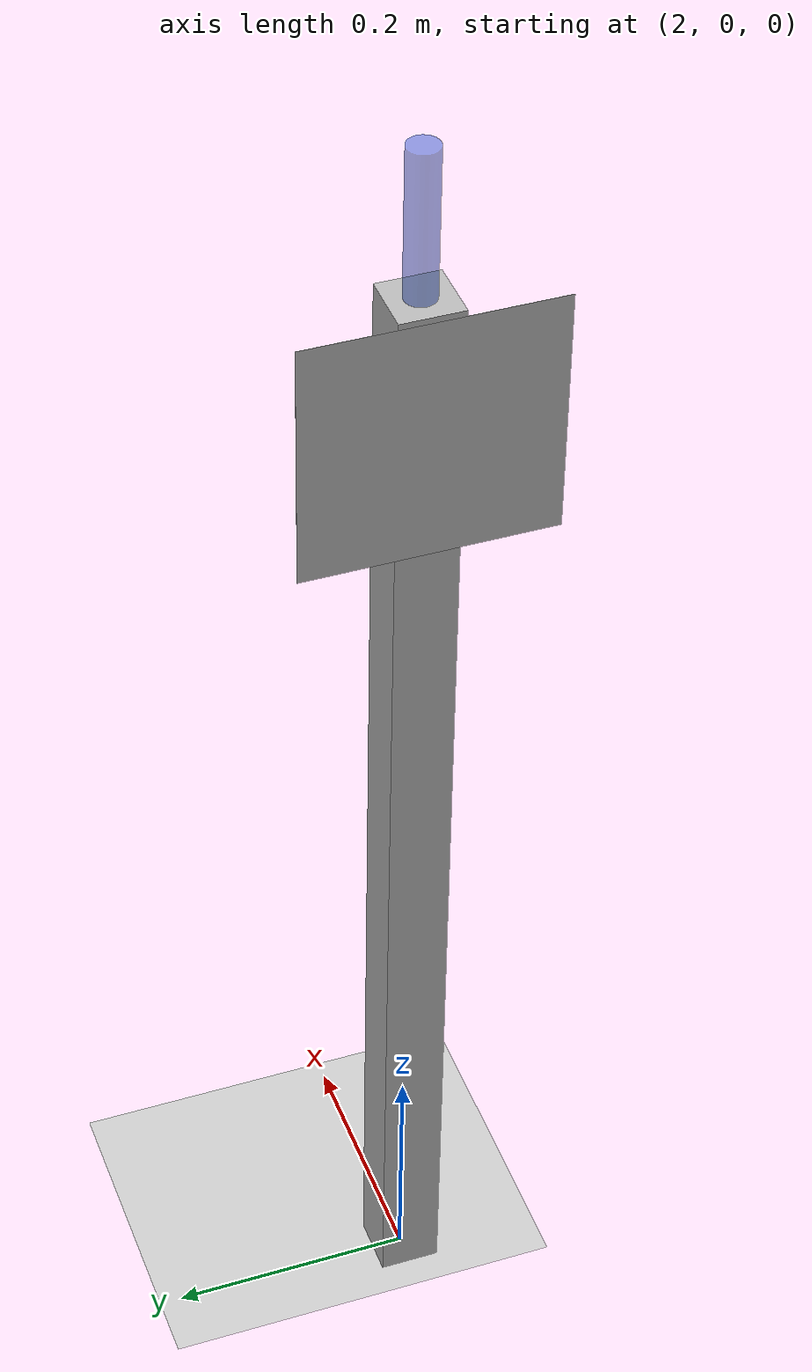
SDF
<?xml version="1.0" ?>
<sdf version="1.5">
  <world name="default">
    <!-- A global light source -->
    <include>
      <uri>model://sun</uri>
    </include>
    <!-- A ground plane -->
    <include>
      <uri>model://ground_plane</uri>
    </include>
    <include>
      <uri>model://baton_and_stand</uri>
    </include>
    <include>
      <uri>model://aruco_marker</uri>
    </include>
    <physics name='default_physics' default='0' type='ode'>
      <gravity>0 0 -9.80665</gravity>
      <ode>
        <solver>
          <type>quick</type>
          <iters>100</iters>
          <sor>1.3</sor>
          <use_dynamic_moi_rescaling>0</use_dynamic_moi_rescaling>
        </solver>
        <constraints>
          <cfm>0</cfm>
          <erp>0.2</erp>
          <contact_max_correcting_vel>100</contact_max_correcting_vel>
          <contact_surface_layer>0.001</contact_surface_layer>
        </constraints>
      </ode>
      <max_step_size>0.002</max_step_size>
      <real_time_factor>1</real_time_factor>
      <real_time_update_rate>500</real_time_update_rate>
      <magnetic_field>6e-06 2.3e-05 -4.2e-05</magnetic_field>
    </physics>
  </world>
</sdf>

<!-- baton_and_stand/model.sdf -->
<sdf version='1.6'>
    <model name="baton_and_stand">
	<static>true</static>
      <link name="baton_stand">
        <pose>2.0 0 0.5 0 0 0</pose>

        <collision name="baton_stand_collision">
          <geometry>
			  <box>
				<size>0.05 0.05 1.0</size>
			  </box>
          </geometry>
        </collision>

        <visual name="baton_stand_visual">
          <geometry>
			  <box>
				<size>0.05 0.05 1.0</size>
			  </box>
          </geometry>
        </visual>
      </link>

      <model name="baton">
	    <pose>2.0 0 1.06 0 0 0</pose>
		  <link name="baton">
			  <inertial>
				<mass>0.05</mass>
				<inertia>
				  <ixx>0.0001</ixx>
				  <ixy>0</ixy>
				  <ixz>0</ixz>
				  <iyy>0.0001</iyy>
				  <iyz>0</iyz>
				  <izz>0.0001</izz>
				</inertia>
			  </inertial>

			<collision name="baton_collision">
			  <geometry>
			    <cylinder>
				  <radius>0.0125</radius>
				  <length>0.12</length>
			    </cylinder>
			  </geometry>
			</collision>

			<visual name="baton_visual">
			  <geometry>
			    <cylinder>
				  <radius>0.0125</radius>
				  <length>0.12</length>
			    </cylinder>
		      </geometry>
			  <material>
			    <lighting>1</lighting>
				  <script>
					<name>Gazebo/BlueTransparent</name>
					<uri>file://media/materials/scripts/gazebo.material</uri>
				  </script>
			  </material>
			</visual>
        </link>
	  </model>
    </model>
</sdf>

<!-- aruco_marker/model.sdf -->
<sdf version='1.6'>
    <model name="aruco_marker">
	<static>true</static>
      <link name="aruco_marker_0">
        <pose>1.969 0 0.9 0 -1.5718 0</pose>

        <collision name="aruco_marker_0_collision">
          <geometry>
			  <box>
				<size>0.01 0.2 0.2</size>
			  </box>
          </geometry>
		  <surface>
            <friction>
              <ode>
                <mu>100</mu>
                <mu2>50</mu2>
              </ode>
            </friction>
          </surface>
        </collision>

        <visual name="aruco_marker_0_visual">
          <cast_shadows>false</cast_shadows>
          <geometry>
			<plane>
              <normal>0 0 1</normal>
              <size>0.2 0.2</size>
            </plane>
          </geometry>
          <material>
            <script>
              <uri>model://aruco_marker/materials/scripts/aruco_marker.material</uri>
              <name>ARUCOMarker/Image</name>
            </script>
          </material>
        </visual>
      </link>
    </model>
</sdf>
